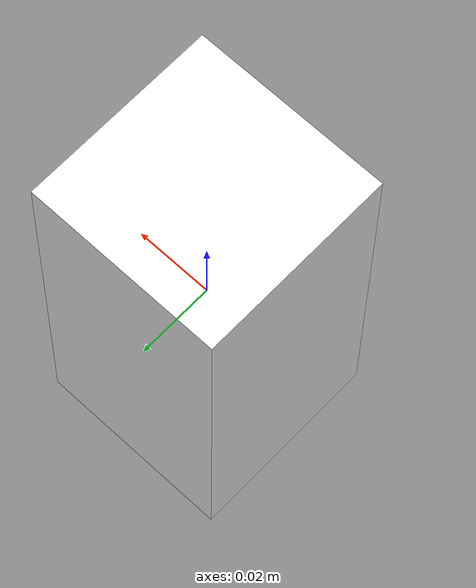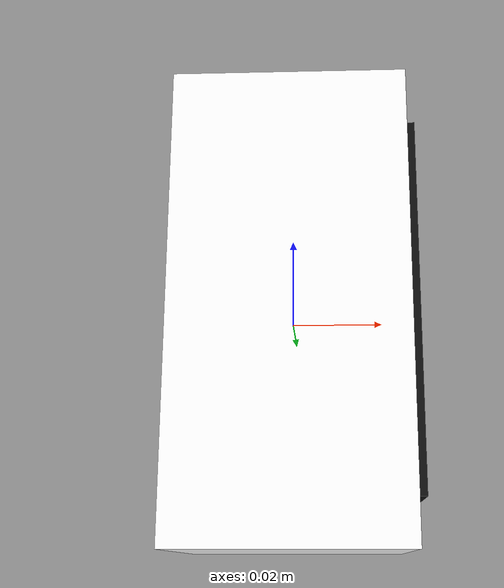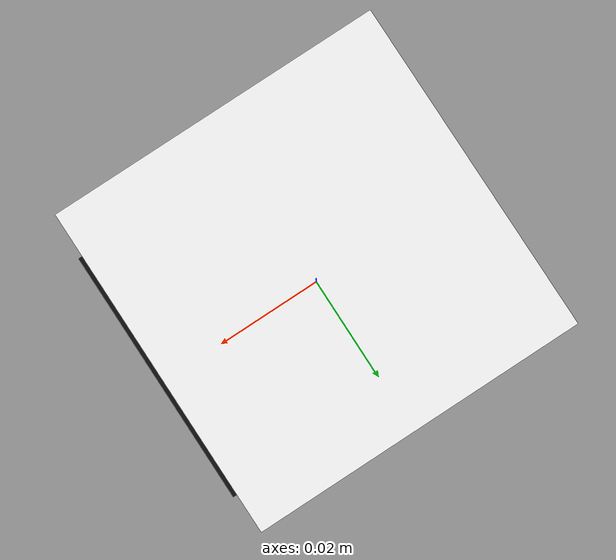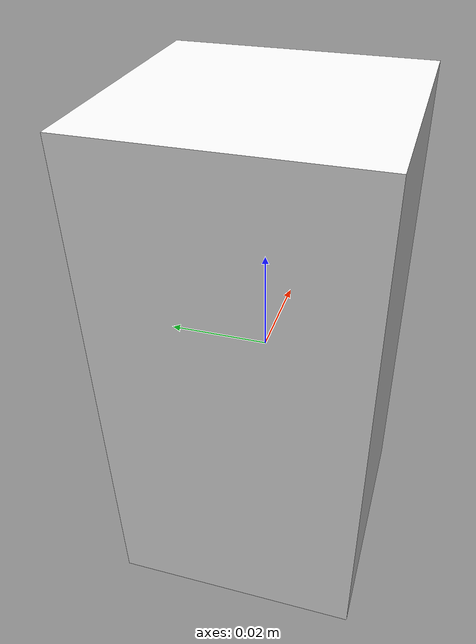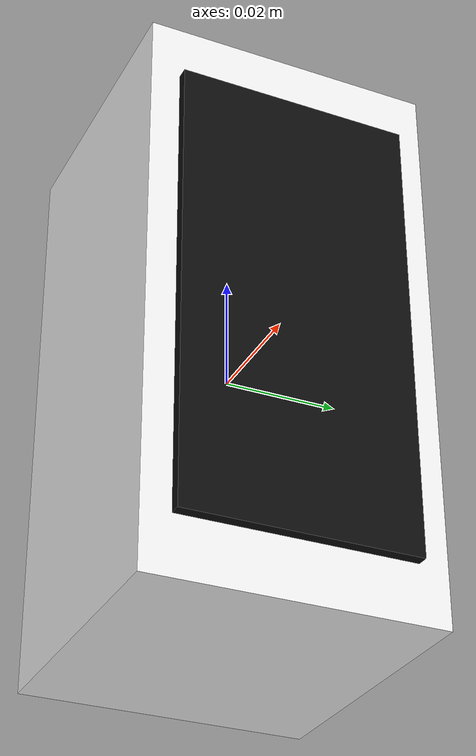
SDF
<?xml version="1.0"?>
<sdf version="1.7">
  <model name="qr_object">
    <static>false</static>
    <link name="object_link">
      <gravity>false</gravity>
      <inertial>
        <mass>0.25</mass>
        <inertia>
          <ixx>0.0005</ixx>
          <iyy>0.0005</iyy>
          <izz>0.0005</izz>
          <ixy>0.0</ixy>
          <ixz>0.0</ixz>
          <iyz>0.0</iyz>
        </inertia>
      </inertial>
      <visual name="body_visual">
        <geometry>
          <box>
            <size>0.05 0.05 0.10</size>
          </box>
        </geometry>
        <material>
          <ambient>0.95 0.95 0.95 1</ambient>
          <diffuse>0.95 0.95 0.95 1</diffuse>
        </material>
      </visual>
      <collision name="body_collision">
        <geometry>
          <box>
            <size>0.05 0.05 0.10</size>
          </box>
        </geometry>
      </collision>
      <visual name="label_panel">
        <pose>0.026 0 0 0 0 0</pose>
        <geometry>
          <box>
            <size>0.002 0.04 0.08</size>
          </box>
        </geometry>
        <material>
          <ambient>0.05 0.05 0.05 1</ambient>
          <diffuse>0.05 0.05 0.05 1</diffuse>
        </material>
      </visual>
    </link>
  </model>
</sdf>
